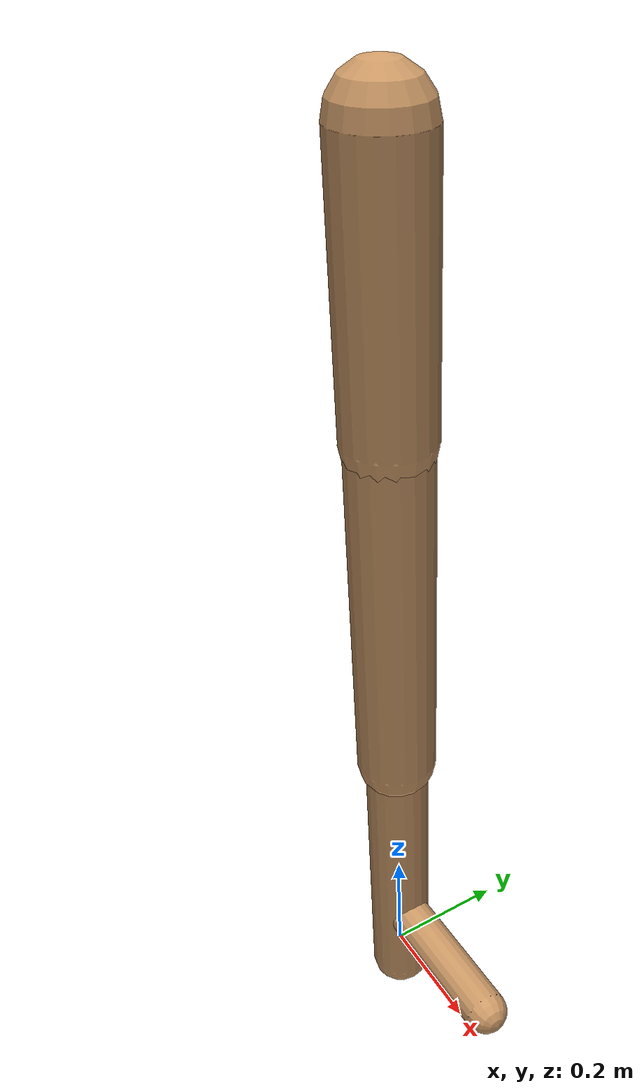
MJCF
<mujoco model="walker2d">
  <compiler angle="degree" coordinate="global" inertiafromgeom="true" />
  <default>
    <joint armature="0.01" damping=".1" limited="true" />
    <geom conaffinity="0" condim="3" contype="1" density="1000" friction="0.8 .1 .1" rgba="0.8 0.6 .4 1" />
  </default>
  <option integrator="RK4" timestep="0.002" />
  <worldbody>

    <body name="torso" pos="0 0 0.284111184327946">
      <joint armature="0" axis="1 0 0" damping="0" limited="false" name="ignorex" pos="0 0 0" stiffness="0" type="slide" />
      <joint armature="0" axis="0 0 1" damping="0" limited="false" name="ignorez" pos="0 0 0" ref="1.25" stiffness="0" type="slide" />
      <joint armature="0" axis="0 1 0" damping="0" limited="false" name="ignorey" pos="0 0 0" stiffness="0" type="hinge" />
      <geom fromto="0 0 1.45 0 0 1.05" name="torso_geom" size="0.0694746313122151" type="capsule" />
      <body name="thigh">
        <joint axis="0 -1 0" name="thigh_joint" pos="0 0 1.05" range="-150 0" type="hinge" />
        <geom fromto="0.0 0.0 1.05 0.0 0.0 0.4654210179499203" name="thigh_geom" size="0.06474074814911453" type="capsule" />
        <body name="leg" pos="0.0 0.0 -0.13457898205007968">
          <joint axis="0 -1 0" name="leg_joint" pos="0 0 0.6" range="-150 0" type="hinge" />
          <geom fromto="0.0 0.0 0.6 0.0 0.0 -0.04953220227786631" name="leg_geom" size="0.05179259851929162" type="capsule" />
          <body name="foot" pos="0.0 0.0 -0.14953220227786632">
            <joint axis="0 -1 0" name="foot_joint" pos="0 0 0.1" range="-45 45" type="hinge" />
            <geom fromto="-0.0 0.0 0.1 0.2736782356953477 0.0 0.1" name="foot_geom" size="0.036912895202744996" type="capsule" />
          </body>
        </body>
      </body>

      <body name="thigh_left">
        <joint axis="0 -1 0" name="thigh_left_joint" pos="0 0 1.05" range="-150 0" type="hinge" />
        <geom fromto="0.0 0.0 1.05 0.0 0.0 0.4654210179499203" name="thigh_left_geom" rgba=".7 .3 .6 1" size="0.06474074814911453" type="capsule" />
        <body name="leg_left" pos="0.0 0.0 -0.13457898205007968">
          <joint axis="0 -1 0" name="leg_left_joint" pos="0 0 0.6" range="-150 0" type="hinge" />
          <geom fromto="0.0 0.0 0.6 0.0 0.0 -0.04953220227786631" name="leg_left_geom" rgba=".7 .3 .6 1" size="0.05179259851929162" type="capsule" />
          <body name="foot_left" pos="0.0 0.0 -0.14953220227786632">
            <joint axis="0 -1 0" name="foot_left_joint" pos="0 0 0.1" range="-45 45" type="hinge" />
            <geom fromto="-0.0 0.0 0.1 0.2736782356953477 0.0 0.1" name="foot_left_geom" rgba=".7 .3 .6 1" size="0.036912895202744996" type="capsule" />
          </body>
        </body>
      </body>
    </body>
  </worldbody>
  <actuator>

    <motor ctrllimited="true" ctrlrange="-1.0 1.0" gear="100" joint="thigh_joint" />
    <motor ctrllimited="true" ctrlrange="-1.0 1.0" gear="100" joint="leg_joint" />
    <motor ctrllimited="true" ctrlrange="-1.0 1.0" gear="100" joint="foot_joint" />
    <motor ctrllimited="true" ctrlrange="-1.0 1.0" gear="100" joint="thigh_left_joint" />
    <motor ctrllimited="true" ctrlrange="-1.0 1.0" gear="100" joint="leg_left_joint" />
    <motor ctrllimited="true" ctrlrange="-1.0 1.0" gear="100" joint="foot_left_joint" />

  </actuator>
</mujoco>
